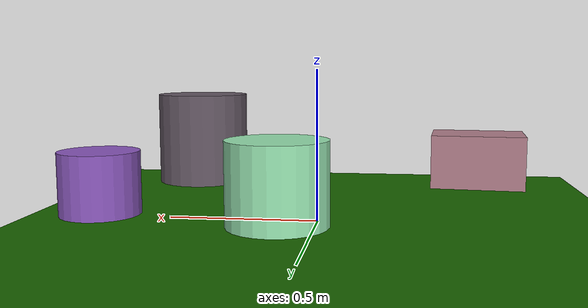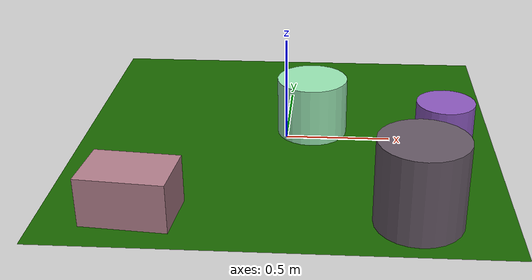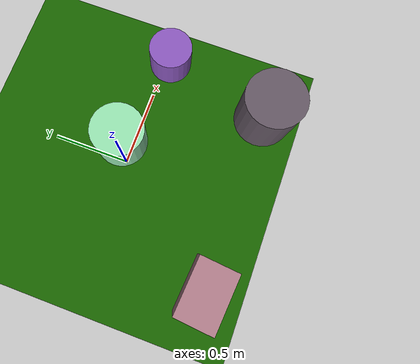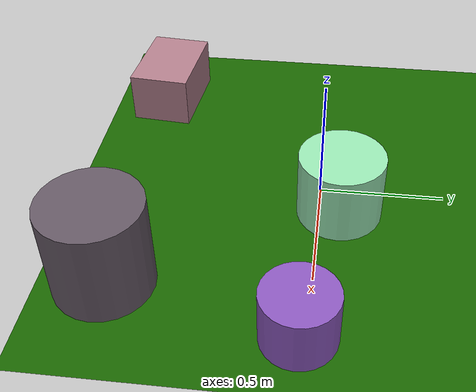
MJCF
<mujoco>
   <asset>
<texture type="skybox" builtin="gradient" rgb1="0.5 0.2 0.3" rgb2="0.6 1.0 0.4" width="500" height="500"/>
<texture name="checker_0" builtin="checker" rgb1="0.3 0.2 0.4" rgb2="0.5 0.5 0.4" width="500" height="500"/>
<texture name="gradient_1" builtin="gradient" rgb1="0.8 0.8 0.5" rgb2="0.6 0.2 0.6" width="500" height="500"/>
<texture name="flat_2" builtin="flat" rgb1="0.6 0.9 0.7" rgb2="0.6 0.9 0.7"  width="500" height="500"/>
<texture name="gradient_3" builtin="gradient" rgb1="0.5 0.2 0.8" rgb2="0.6 0.5 0.7" width="500" height="500"/><material name="checker_0_mat" reflectance="0.8085592723683535" texrepeat="6 6" texture="checker_0" texuniform="false" />
<material name="gradient_1_mat" reflectance="0.004368231398782174" texture="gradient_1" texuniform="true"/>
<material name="flat_2_mat" reflectance="0.7214939662143478" texture="flat_2" texuniform="true"/>
<material name="gradient_3_mat" reflectance="0.34821054759149894" texture="gradient_3" texuniform="true"/>
   </asset>

   <worldbody>
     <geom type="plane" size="1 1 0.1" rgba="0.1 0.4 0.0 1" />
<light pos="0.49344594789500285 0.9012517501301054 2" dir="0 0 -1" cutoff="90" diffuse="1 1 1" specular="1 1 1"/>
<light pos="0.833105179361733 -0.3254448331677655 2" dir="0 0 -1" cutoff="90" diffuse="1 1 1" specular="1 1 1"/>
<geom type="cylinder" pos="0.59 -0.75 0.19" size="0.19 0.19 0.19" material="checker_0_mat" euler="0 0 89" />
<geom type="box" pos="-0.6 -0.75 0.11" size="0.13 0.19 0.11" material="gradient_1_mat" euler="0 0 85" />
<geom type="cylinder" pos="0.12 0.08 0.14" size="0.17 0.14 0.14" material="flat_2_mat" euler="0 0 89" />
<geom type="cylinder" pos="0.76 -0.03 0.11" size="0.14 0.11 0.11" material="gradient_3_mat" euler="0 0 57" /><camera euler="60 0 180" fovy="60" name="camera1" pos="-0.2 -1.5 1"></camera>   </worldbody>
   <visual>
      <headlight diffuse="0.7 0.7 0.7"/>
   </visual>
</mujoco>
